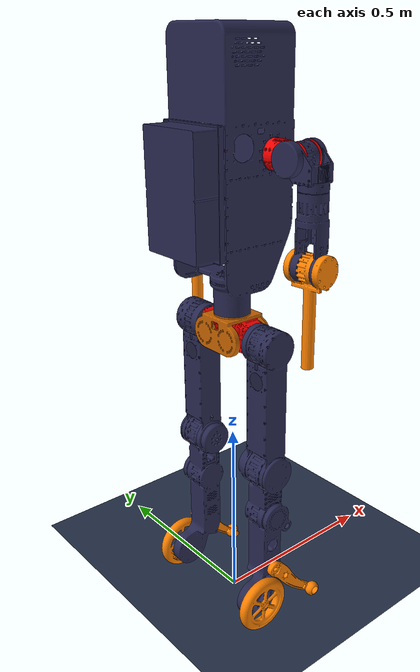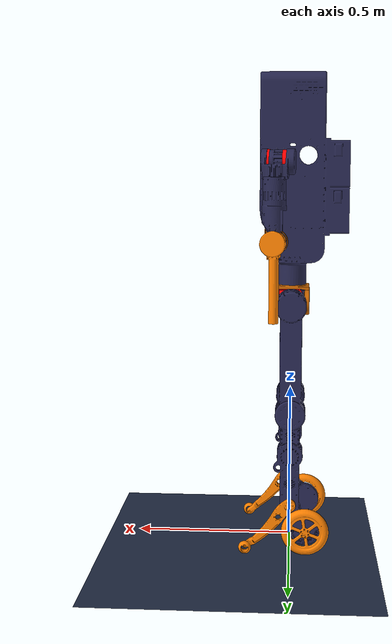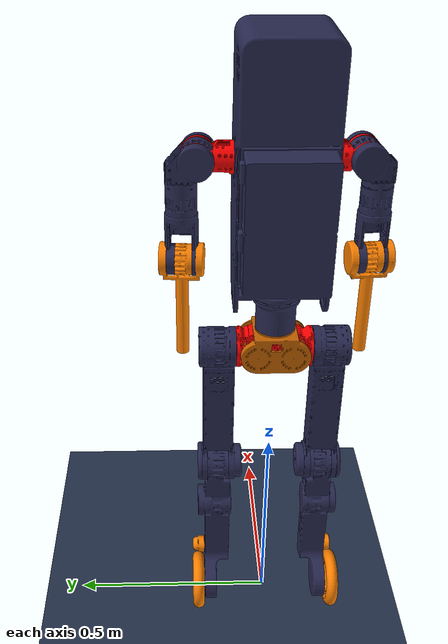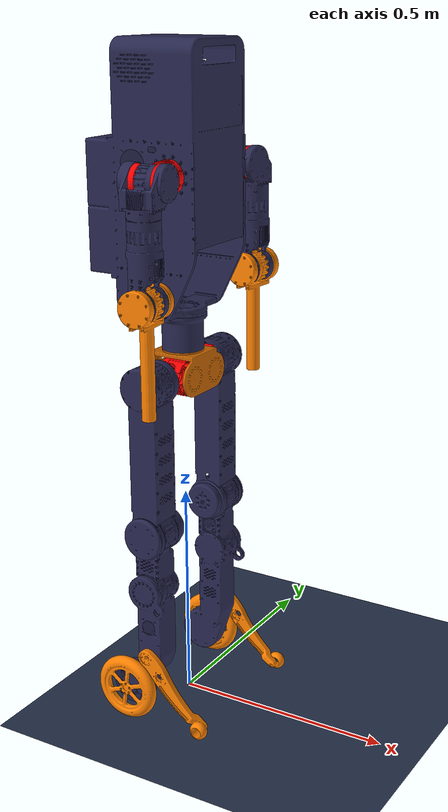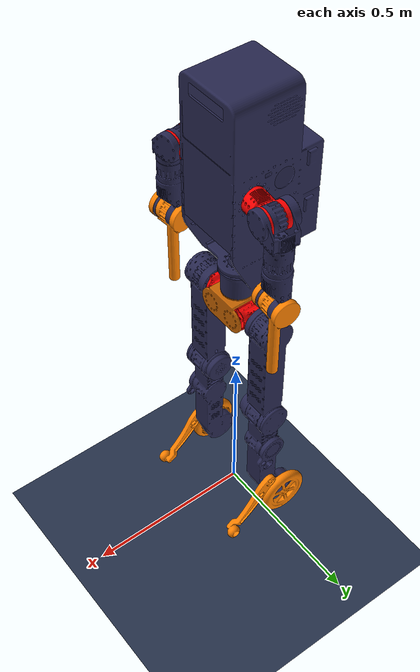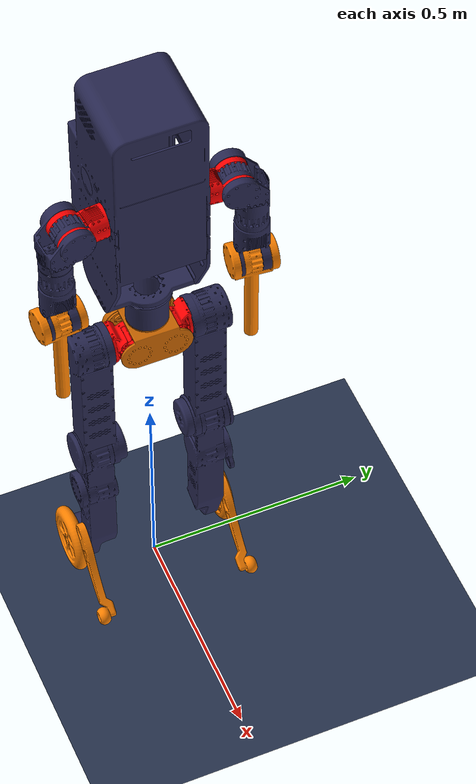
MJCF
<mujoco model="MAHRU_TWL">
	<compiler angle="radian" meshdir="meshes/" />
	<option timestep="0.001" tolerance="1e-08" cone="elliptic" jacobian="sparse" solver="CG" iterations="30" />
	<size njmax="500" nconmax="100" />

	<visual>
		<global fovy="45" linewidth="2" glow="0.3"/>
		<quality shadowsize="2048" numslices="48"/>
		<map stiffness="50" stiffnessrot="100"/>
		<scale forcewidth="0.03" contactwidth="0.15" contactheight="0.1" connect="0.1" com="0.05" jointlength="0.25" jointwidth="0.05"
						actuatorlength="0.5" actuatorwidth="0.3" framelength="1" framewidth="0.03"/>
		<rgba haze="0.6 0.8 0.9 1" force="1 0 0 0.5" com="0 0 1 1"/>
	</visual>

	<default>
		<geom contype="1" conaffinity="1" condim="3" material="MatGnd"/>
		<joint limited="false" damping="0.1" armature="0.1" stiffness="0" frictionloss="0"/>
		<motor gear="1 0 0 0 0 0" ctrllimited="false" ctrlrange="-100 100"/>
	</default>

	<asset>
		<mesh name="base_link" file="base_link.STL" />
		<mesh name="TOP" file="TOP.STL" />
		<mesh name="RA1" file="RA1.STL" />
		<mesh name="RA2" file="RA2.STL" />
		<mesh name="RA3" file="RA3.STL" />
		<mesh name="RA4" file="RA4.STL" />
		<mesh name="LA1" file="LA1.STL" />
		<mesh name="LA2" file="LA2.STL" />
		<mesh name="LA3" file="LA3.STL" />
		<mesh name="LA4" file="LA4.STL" />
		<mesh name="RL1" file="RL1.STL" />
		<mesh name="RL2" file="RL2.STL" />
		<mesh name="RL3" file="RL3.STL" />
		<mesh name="RL4" file="RL4.STL" />
		<mesh name="RW" file="RW.STL" />
		<mesh name="LL1" file="LL1.STL" />
		<mesh name="LL2" file="LL2.STL" />
		<mesh name="LL3" file="LL3.STL" />
		<mesh name="LL4" file="LL4.STL" />
		<mesh name="LW" file="LW.STL" />

		<texture name="picwheel" type="2d"     builtin="none" file="Wheel-01.png"/>
		<texture name="texplane" type="2d"     builtin="checker"  width="512" height="512" mark="edge"  rgb1="0.2 0.3 0.4" rgb2="0.1 0.1 0.2" markrgb="1 1 1"/>
		<material name="MatGnd"   reflectance="0" specular="1" shininess="1" rgba="0 0.4 0.5 1"/>
		<material name="MatPlane" texture="texplane" reflectance='0' texrepeat="1 1" texuniform="true"/>
		<material name="MatWheel" texture="picwheel" emission="0.3" reflectance="0.3" shininess="0.5"/>
	</asset>

	<worldbody>
		<!-- Light-->
		<light directional="true" pos=" 5 -5 5" dir="-0.5  0.5 -1" diffuse="0.3 0.3 0.3" specular="0.0 0.0 0.0" castshadow="false"/>
		<light directional="true" pos=" 5  5 5" dir="-0.5 -0.5 -1" diffuse="0.3 0.3 0.3" specular="0.0 0.0 0.0" castshadow="false"/>
		<light directional="true" pos="-5  5 5" dir=" 0.5 -0.5 -1" diffuse="0.3 0.3 0.3" specular="0.0 0.0 0.0" castshadow="false"/>
		<light directional="true" pos="-5 -5 5" dir=" 0.5  0.5 -1" diffuse="0.3 0.3 0.3" specular="0.0 0.0 0.0" castshadow="false"/>

		<!-- Ground -->
		<geom name="Ground" type="plane" pos="0 0 0" size="0 0 100" material="MatPlane" condim="3"/>

		<body name="Base_Link" pos="0 0 0.87">
			<joint name="Floating_Base" type="free" armature="0" />
			<inertial pos="-0.00293976 1.32398e-09 -0.0693448" quat="0.707092 0.707092 -0.00461587 0.00461587" mass="0.663335" diaginertia="0.00122749 0.00115815 0.000481685" />
			<geom type="mesh" rgba="0.784 0.3921 0 1" mesh="base_link" />

			<body name="TOP" pos="0 0 0.35639">
				<inertial pos="-0.048997 0.00059458 -0.0674766" quat="0.998637 -0.00504995 0.051946 0.000815917" mass="12.7217" diaginertia="0.0573787 0.0483973 0.0405027" />
				<joint name="TOPJ" pos="0 0 0" axis="0 0 -1" limited="true" range="-3.14 3.14" damping="0.1" frictionloss="0.1" />
				<geom type="mesh" rgba="0.15686 0.15686 0.31373 1" mesh="TOP" />

				<body name="RA1" pos="0.047556 -0.17703 0" quat="0.706432 0.706435 0.0308435 0.0308433">
					<inertial pos="-0.0022174 0.000646182 -0.0905734" quat="0.529029 0.519537 -0.477301 0.471586" mass="0.760413" diaginertia="0.000421496 0.000390053 0.000367509" />
					<joint name="RAJ1" pos="0 0 0" axis="0 0 1" />
					<geom type="mesh" rgba="1.0 0.0 0.0 1" mesh="RA1" />
					<body name="RA2" pos="0 0 0" quat="-2.59734e-06 0.707105 2.59735e-06 0.707108">
						<inertial pos="0.00839424 0.00457938 -0.00207496" quat="-0.22546 0.649098 0.212913 0.694628" mass="0.595912" diaginertia="0.000417113 0.000286358 0.000213342" />
						<joint name="RAJ2" pos="0 0 0" axis="0 0 1" />
						<geom type="mesh" rgba="0.15686 0.15686 0.31373 1" mesh="RA2" />
						<body name="RA3" pos="0.035 0.12115 0.00305" quat="0.499998 -0.5 -0.5 -0.500002">
							<inertial pos="-0.000338046 -0.00117373 0.010182" quat="-0.0187317 0.718878 -0.0217545 0.694544" mass="0.919977" diaginertia="0.000460641 0.000415222 0.000384275" />
							<joint name="RAJ3" pos="0 0 0" axis="0 0 -1" />
							<geom type="mesh" rgba="0.15686 0.15686 0.31373 1" mesh="RA3" />
							<body name="RA4" pos="3e-05 0.0003 0.11885" quat="0.707105 -0.707108 0 0">
								<inertial pos="-2.9077e-05 -0.0332366 0.00190144" quat="0.500583 0.499412 -0.49929 0.500713" mass="0.663638" diaginertia="0.0008007 0.000678786 0.000202803" />
								<joint name="RAJ4" pos="0 0 0" axis="0 0 1" />
								<geom name="RA" type="mesh" rgba="1.00000 0.50980 0.00000 1" mesh="RA4" />
							</body>
						</body>
					</body>
				</body> <!-- End of RA1 -->

				<body name="LA1" pos="0.047556 0.17703 0" quat="0.706432 0.706435 -0.0308435 -0.0308433">
					<inertial pos="-0.00218056 0.000646182 0.0905734" quat="0.529029 0.519537 -0.477301 0.471586" mass="0.760413" diaginertia="0.000421496 0.000390053 0.000367509" />
					<joint name="LAJ1" pos="0 0 0" axis="0 0 1" limited="true" range="-3.14 3.14" damping="0.1" frictionloss="0.1" />
					<geom type="mesh" rgba="1.0 0.0 0.0 1" mesh="LA1" />
					<body name="LA2" pos="0 0 0" quat="-2.59734e-06 0.707105 2.59735e-06 0.707108">
						<inertial pos="-0.00839424 0.00464648 -0.00212455" quat="-0.22546 0.649098 0.212913 0.694628" mass="0.595912" diaginertia="0.000417113 0.000286358 0.000213342" />
						<joint name="LAJ2" pos="0 0 0" axis="0 0 1" limited="true" range="-3.14 3.14" damping="0.1" frictionloss="0.1" />
						<geom type="mesh" rgba="0.15686 0.15686 0.31373 1" mesh="LA2" />
						<body name="LA3" pos="-0.035 0.12115 0.00305" quat="0.499998 -0.5 -0.5 -0.500002">
							<inertial pos="-0.000338047 -0.00117373 0.010182" quat="-0.0187317 0.718878 -0.0217545 0.694544" mass="0.919977" diaginertia="0.000460641 0.000415222 0.000384275" />
							<joint name="LAJ3" pos="0 0 0" axis="0 0 -1" limited="true" range="-3.14 3.14" damping="0.1" frictionloss="0.1" />
							<geom type="mesh" rgba="0.15686 0.15686 0.31373 1" mesh="LA3" />
							<body name="LA4" pos="3e-05 0.0003 0.11885" quat="0.707105 -0.707108 0 0">
								<inertial pos="-2.9077e-05 -0.0332366 0.00190144" quat="0.500583 0.499412 -0.49929 0.500713" mass="0.663638" diaginertia="0.0008007 0.000678786 0.000202803" />
								<joint name="LAJ4" pos="0 0 0" axis="0 0 1" limited="true" range="-3.14 3.14" damping="0.1" frictionloss="0.1" />
								<geom name="LA" type="mesh" rgba="1.00000 0.50980 0.00000 1" mesh="LA4" />
							</body>
						</body>
					</body>
				</body> <!-- End of LA1 -->
			</body> <!-- End of TOP -->

			<body name="RL1" pos="0 -0.0405 -0.083614" quat="0.499998 -0.5 0.500002 -0.5">
				<inertial pos="0.0277301 -0.240185 0.0201778" quat="0.522838 0.521369 -0.476954 0.476791" mass="1.39472" diaginertia="0.000946984 0.00078212 0.000703348" />
				<joint name="RLJ1" pos="0 0 0" axis="0 0 1" />
				<geom type="mesh" rgba="1.0 0.0 0.0 1" mesh="RL1" />
				<body name="RL2" pos="0.07925 0 0" quat="2.31078e-07 0.707105 -2.31079e-07 0.707108">
					<inertial pos="0.000106717 -0.0839727 -0.0181511" quat="0.505728 0.506179 -0.494252 0.493698" mass="2.22253" diaginertia="0.0101134 0.00973372 0.00125876" />
					<joint name="RLJ2" pos="0 0 0" axis="0 0 -1" />
					<geom type="mesh" rgba="0.15686 0.15686 0.31373 1" mesh="RL2" />
					<body name="RL3" pos="0 -0.34 0">
						<inertial pos="-0.0043099 -0.139813 0.012094" quat="0.534991 0.471054 -0.505093 0.486594" mass="2.32414" diaginertia="0.0195557 0.0184456 0.0016263" />
						<joint name="RLJ3" pos="0 0 0" axis="0 0 -1" />
						<geom type="mesh" rgba="0.15686 0.15686 0.31373 1" mesh="RL3" />
						<body name="RL4" pos="0 -0.292 0.04575" euler="0 0 0">
							<inertial pos="0.0457249 0.0172073 0.00788433" quat="0.334716 0.637561 -0.325643 0.612729" mass="0.56011" diaginertia="0.00128601 0.00110098 0.000219687" />
							<joint name="RLJ4" pos="0 0 0" axis="0 0 1" />
							<geom name="RTW" type="mesh" rgba="1.00000 0.50980 0.00000 1" mesh="RL4" />
						</body>
						<body name="RW" pos="-0.05 -0.375 0.05775">
							<inertial pos="-3.13582e-05 -2.36301e-05 -0.00592704" quat="0.315268 0.632694 -0.315751 0.632934" mass="0.702654" diaginertia="0.00171837 0.000925024 0.000924166" />
							<joint name="RWJ" pos="0 0 0" axis="0 0 -1" />
							<geom name="RW" type="mesh" rgba="1.00000 0.50980 0.00000 1" mesh="RW" />
						</body>
					</body>
				</body>
			</body> <!-- End of RL1 -->

			<body name="LL1" pos="0 0.0405 -0.083614" quat="0.499998 -0.5 0.500002 -0.5">
				<inertial pos="-0.00522959 -0.000129003 -0.000532259" quat="0.522838 0.521369 -0.476954 0.476791" mass="1.39472" diaginertia="0.000946984 0.00078212 0.000703348" />
				<joint name="LLJ1" pos="0 0 0" axis="0 0 1" />
				<geom type="mesh" rgba="1.0 0.0 0.0 1" mesh="LL1" />
				<body name="LL2" pos="-0.07925 0 0" quat="2.31078e-07 0.707105 -2.31079e-07 0.707108">
					<inertial pos="0.000361913 -0.117601 -0.00414202" quat="0.505728 0.506179 -0.494252 0.493698" mass="2.22253" diaginertia="0.0101134 0.00973372 0.00125876" />
					<joint name="LLJ2" pos="0 0 0" axis="0 0 -1" />
					<geom type="mesh" rgba="0.15686 0.15686 0.31373 1" mesh="LL2" />
					<body name="LL3" pos="0 -0.34 0">
						<inertial pos="-0.00430926 -0.139813 -0.012094" quat="0.534991 0.471054 -0.505093 0.486594" mass="2.32414" diaginertia="0.0195557 0.0184456 0.0016263" />
						<joint name="LLJ3" pos="0 0 0" axis="0 0 -1" />
						<geom type="mesh" rgba="0.15686 0.15686 0.31373 1" mesh="LL3" />
						<body name="LL4" pos="0 -0.292 -0.04575">
							<inertial pos="0.0457383 0.0172204 -0.00788433" quat="0.334716 0.637561 -0.325643 0.612729" mass="0.56011" diaginertia="0.00128601 0.00110098 0.000219687" />
							<joint name="LLJ4" pos="0 0 0" axis="0 0 1" />
							<geom name="LTW" type="mesh" rgba="1.00000 0.50980 0.00000 1" mesh="LL4" />
						</body>
						<body name="LW" pos="-0.05 -0.375 -0.05775">
							<inertial pos="-1.59704e-05 -3.58702e-05 0.00592704" quat="0.315268 0.632694 -0.315751 0.632934" mass="0.702654" diaginertia="0.00171837 0.000925024 0.000924166" />
							<joint name="LWJ" pos="0 0 0" axis="0 0 -1" />
							<geom name="LW" type="mesh" rgba="1.00000 0.50980 0.00000 1" mesh="LW" />
						</body>
					</body>
				</body>
			</body> <!-- End of LL1 -->
		</body> <!-- End of Base_Link -->
	</worldbody>

	<contact>
		<pair name="GrContact_RA" geom1="Ground" geom2="RA" friction="10 10 1 1 1"/>
		<pair name="GrContact_LA" geom1="Ground" geom2="LA" friction="10 10 1 1 1"/>

		<pair name="GrContact_RW" geom1="Ground" geom2="RW" friction="10 10 1 1 1"/>
		<pair name="GrContact_LW" geom1="Ground" geom2="LW" friction="10 10 1 1 1"/>

		<pair name="GrContact_RTW" geom1="Ground" geom2="RTW" friction="10 10 1 1 1"/>
		<pair name="GrContact_LTW" geom1="Ground" geom2="LTW" friction="10 10 1 1 1"/>
	</contact>

	<actuator>
		<motor name="TOP" ctrllimited="false" gear="1 0 0 0 0 0" joint="TOPJ"/>

		<motor name="RA1" ctrllimited="false" gear="1 0 0 0 0 0" joint="RAJ1"/>
		<motor name="RA2" ctrllimited="false" gear="1 0 0 0 0 0" joint="RAJ2"/>
		<motor name="RA3" ctrllimited="false" gear="1 0 0 0 0 0" joint="RAJ3"/>
		<motor name="RA4" ctrllimited="false" gear="1 0 0 0 0 0" joint="RAJ4"/>

		<motor name="LA1" ctrllimited="false" gear="1 0 0 0 0 0" joint="LAJ1"/>
		<motor name="LA2" ctrllimited="false" gear="1 0 0 0 0 0" joint="LAJ2"/>
		<motor name="LA3" ctrllimited="false" gear="1 0 0 0 0 0" joint="LAJ3"/>
		<motor name="LA4" ctrllimited="false" gear="1 0 0 0 0 0" joint="LAJ4"/>

		<motor name="RL1" ctrllimited="false" gear="1 0 0 0 0 0" joint="RLJ1"/>
		<motor name="RL2" ctrllimited="false" gear="1 0 0 0 0 0" joint="RLJ2"/>
		<motor name="RL3" ctrllimited="false" gear="1 0 0 0 0 0" joint="RLJ3"/>
		<motor name="RL4" ctrllimited="false" gear="1 0 0 0 0 0" joint="RLJ4"/>
		<motor name="RW" ctrllimited="false" gear="1 0 0 0 0 0" joint="RWJ"/>

		<motor name="LL1" ctrllimited="false" gear="1 0 0 0 0 0" joint="LLJ1"/>
		<motor name="LL2" ctrllimited="false" gear="1 0 0 0 0 0" joint="LLJ2"/>
		<motor name="LL3" ctrllimited="false" gear="1 0 0 0 0 0" joint="LLJ3"/>
		<motor name="LL4" ctrllimited="false" gear="1 0 0 0 0 0" joint="LLJ4"/>
		<motor name="LW" ctrllimited="false" gear="1 0 0 0 0 0" joint="LWJ"/>
	</actuator>
</mujoco>
